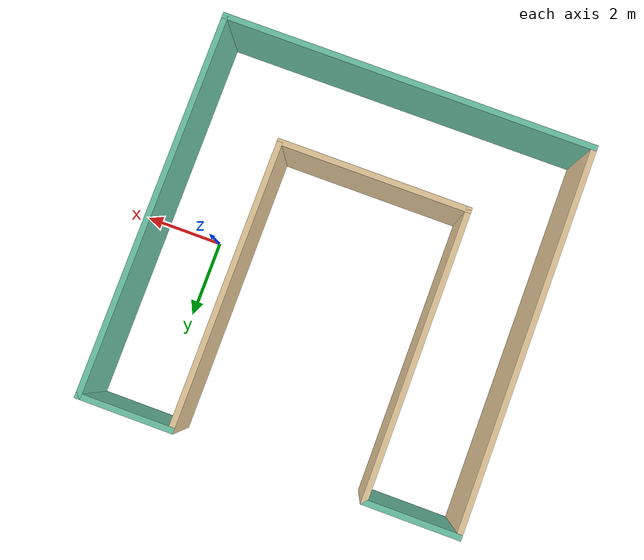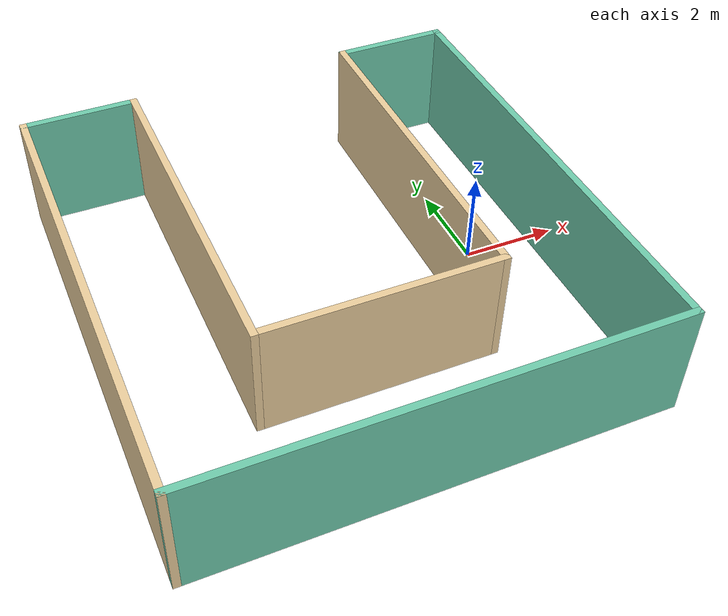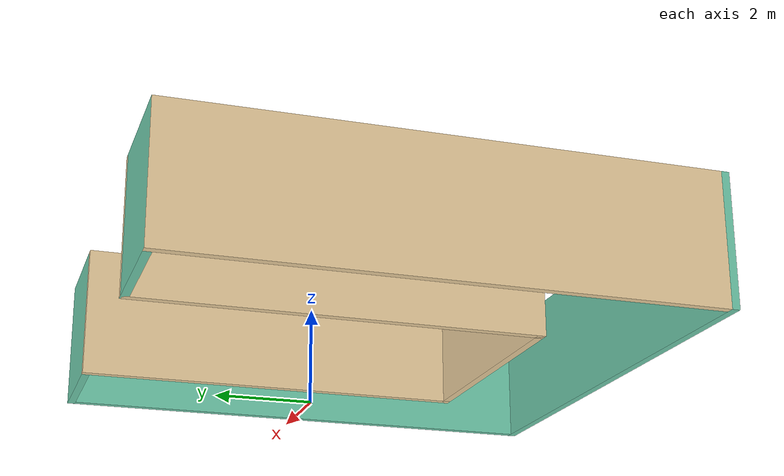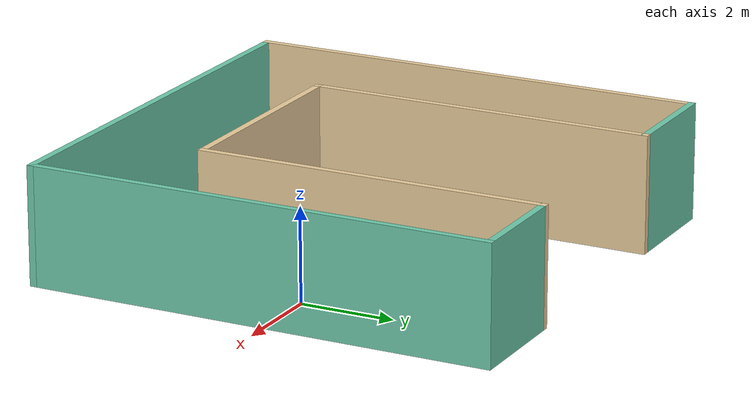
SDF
<?xml version='1.0'?>
<sdf version='1.7'>
  <model name='simple_room_space'>
    <pose>-3.30878 -0.206354 0 0 -0 0</pose>
    <link name='Wall_10'>
      <collision name='Wall_10_Collision'>
        <geometry>
          <box>
            <size>7.51859 0.15 2.5</size>
          </box>
        </geometry>
        <pose>0 0 1.25 0 -0 0</pose>
      </collision>
      <visual name='Wall_10_Visual'>
        <pose>0 0 1.25 0 -0 0</pose>
        <geometry>
          <box>
            <size>7.51859 0.15 2.5</size>
          </box>
        </geometry>
        <material>
          <script>
            <uri>file://media/materials/scripts/gazebo.material</uri>
            <name>Gazebo/Grey</name>
          </script>
          <ambient>0.921569 0.807843 0.615686 1</ambient>
        </material>
        <meta>
          <layer>0</layer>
        </meta>
      </visual>
      <pose>-2.42367 1.24071 0 0 -0 -1.5708</pose>
    </link>
    <link name='Wall_11'>
      <collision name='Wall_11_Collision'>
        <geometry>
          <box>
            <size>5 0.15 2.5</size>
          </box>
        </geometry>
        <pose>0 0 1.25 0 -0 0</pose>
      </collision>
      <visual name='Wall_11_Visual'>
        <pose>0 0 1.25 0 -0 0</pose>
        <geometry>
          <box>
            <size>5 0.15 2.5</size>
          </box>
        </geometry>
        <material>
          <script>
            <uri>file://media/materials/scripts/gazebo.material</uri>
            <name>Gazebo/Grey</name>
          </script>
          <ambient>0.921569 0.807843 0.615686 1</ambient>
        </material>
        <meta>
          <layer>0</layer>
        </meta>
      </visual>
      <pose>0.001334 -2.44357 0 0 -0 0</pose>
    </link>
    <link name='Wall_12'>
      <collision name='Wall_12_Collision'>
        <geometry>
          <box>
            <size>7.51859 0.15 2.5</size>
          </box>
        </geometry>
        <pose>0 0 1.25 0 -0 0</pose>
      </collision>
      <visual name='Wall_12_Visual'>
        <pose>0 0 1.25 0 -0 0</pose>
        <geometry>
          <box>
            <size>7.51859 0.15 2.5</size>
          </box>
        </geometry>
        <material>
          <script>
            <uri>file://media/materials/scripts/gazebo.material</uri>
            <name>Gazebo/Grey</name>
          </script>
          <ambient>0.921569 0.807843 0.615686 1</ambient>
        </material>
        <meta>
          <layer>0</layer>
        </meta>
      </visual>
      <pose>2.42633 1.24071 0 0 -0 1.5708</pose>
    </link>
    <link name='Wall_13'>
      <collision name='Wall_13_Collision'>
        <geometry>
          <box>
            <size>2.5 0.15 2.5</size>
          </box>
        </geometry>
        <pose>0 0 1.25 0 -0 0</pose>
      </collision>
      <visual name='Wall_13_Visual'>
        <pose>0 0 1.25 0 -0 0</pose>
        <geometry>
          <box>
            <size>2.5 0.15 2.5</size>
          </box>
        </geometry>
        <material>
          <script>
            <uri>file://media/materials/scripts/gazebo.material</uri>
            <name>Gazebo/Grey</name>
          </script>
          <ambient>0.435294 0.796078 0.67451 1</ambient>
        </material>
        <meta>
          <layer>0</layer>
        </meta>
      </visual>
      <pose>3.60133 4.925 0 0 -0 0</pose>
    </link>
    <link name='Wall_20'>
      <collision name='Wall_20_Collision'>
        <geometry>
          <box>
            <size>10 0.15 2.5</size>
          </box>
        </geometry>
        <pose>0 0 1.25 0 -0 0</pose>
      </collision>
      <visual name='Wall_20_Visual'>
        <pose>0 0 1.25 0 -0 0</pose>
        <geometry>
          <box>
            <size>10 0.15 2.5</size>
          </box>
        </geometry>
        <material>
          <script>
            <uri>file://media/materials/scripts/gazebo.material</uri>
            <name>Gazebo/Grey</name>
          </script>
          <ambient>0.921569 0.807843 0.615686 1</ambient>
        </material>
        <meta>
          <layer>0</layer>
        </meta>
      </visual>
      <pose>-4.77633 -5e-06 0 0 -0 1.5708</pose>
    </link>
    <link name='Wall_23'>
      <collision name='Wall_23_Collision'>
        <geometry>
          <box>
            <size>10 0.15 2.5</size>
          </box>
        </geometry>
        <pose>0 0 1.25 0 -0 0</pose>
      </collision>
      <visual name='Wall_23_Visual'>
        <pose>0 0 1.25 0 -0 0</pose>
        <geometry>
          <box>
            <size>10 0.15 2.5</size>
          </box>
        </geometry>
        <material>
          <script>
            <uri>file://media/materials/scripts/gazebo.material</uri>
            <name>Gazebo/Grey</name>
          </script>
          <ambient>0.435294 0.796078 0.67451 1</ambient>
        </material>
        <meta>
          <layer>0</layer>
        </meta>
      </visual>
      <pose>4.77633 -5e-06 0 0 -0 -1.5708</pose>
    </link>
    <link name='Wall_24'>
      <collision name='Wall_24_Collision'>
        <geometry>
          <box>
            <size>9.70267 0.15 2.5</size>
          </box>
        </geometry>
        <pose>0 0 1.25 0 -0 0</pose>
      </collision>
      <visual name='Wall_24_Visual'>
        <pose>0 0 1.25 0 -0 0</pose>
        <geometry>
          <box>
            <size>9.70267 0.15 2.5</size>
          </box>
        </geometry>
        <material>
          <script>
            <uri>file://media/materials/scripts/gazebo.material</uri>
            <name>Gazebo/Grey</name>
          </script>
          <ambient>0.435294 0.796078 0.67451 1</ambient>
        </material>
        <meta>
          <layer>0</layer>
        </meta>
      </visual>
      <pose>-0 -4.925 0 0 -0 3.14159</pose>
    </link>
    <link name='Wall_9'>
      <collision name='Wall_9_Collision'>
        <geometry>
          <box>
            <size>2.5 0.15 2.5</size>
          </box>
        </geometry>
        <pose>0 0 1.25 0 -0 0</pose>
      </collision>
      <visual name='Wall_9_Visual'>
        <pose>0 0 1.25 0 -0 0</pose>
        <geometry>
          <box>
            <size>2.5 0.15 2.5</size>
          </box>
        </geometry>
        <material>
          <script>
            <uri>file://media/materials/scripts/gazebo.material</uri>
            <name>Gazebo/Grey</name>
          </script>
          <ambient>0.435294 0.796078 0.67451 1</ambient>
        </material>
        <meta>
          <layer>0</layer>
        </meta>
      </visual>
      <pose>-3.59867 4.925 0 0 -0 0</pose>
    </link>
    <static>1</static>
  </model>
</sdf>
